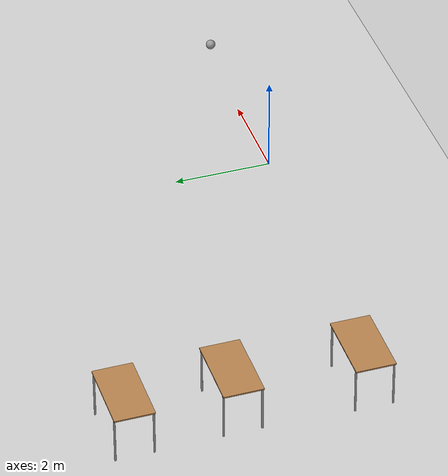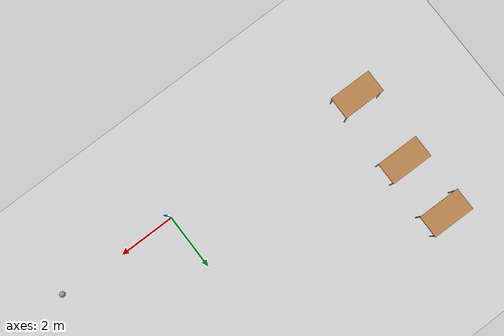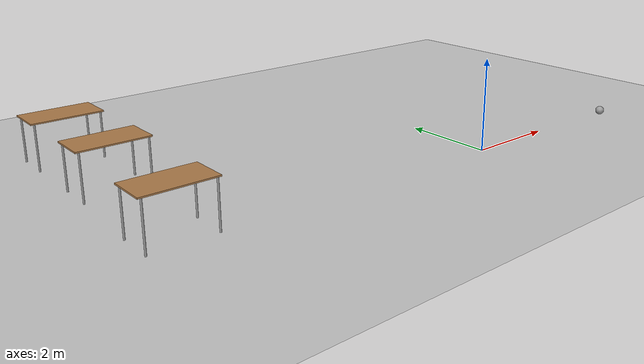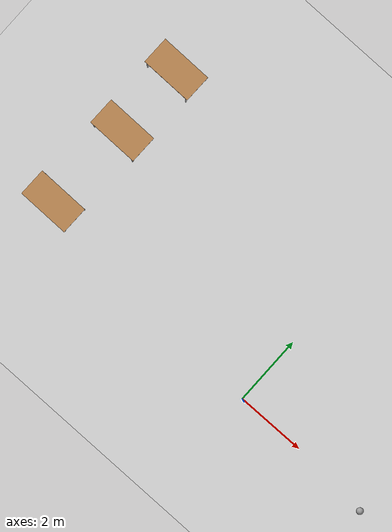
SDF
<sdf version="1.7">
 <world name="default">
  <model name="ground_plane">
   <static>1</static>
   <link name="link">
    <collision name="collision">
     <geometry><plane><normal>0 0 1</normal><size>100 100</size></plane></geometry>
     <surface>
      <contact><collide_bitmask>65535</collide_bitmask></contact>
      <friction><ode><mu>100</mu><mu2>50</mu2></ode></friction>
     </surface>
    </collision>
    <visual name="visual">
     <cast_shadows>0</cast_shadows>
     <geometry><plane><normal>0 0 1</normal><size>100 100</size></plane></geometry>
     <material>
      <script><uri>file://media/materials/scripts/gazebo.material</uri><name>Gazebo/Grey</name></script>
     </material>
    </visual>
   </link>
  </model>
  <model name="table_clone_6">
   <static>1</static>
   <link name="link">
    <collision name="surface">
     <pose>0 0 1 0 -0 0</pose>
     <geometry><box><size>1.5 0.8 0.03</size></box></geometry>
     <surface><friction><ode><mu>0.6</mu><mu2>0.6</mu2></ode></friction></surface>
    </collision>
    <visual name="visual1">
     <pose>0 0 1 0 -0 0</pose>
     <geometry><box><size>1.5 0.8 0.03</size></box></geometry>
     <material>
      <script><uri>file://media/materials/scripts/gazebo.material</uri><name>Gazebo/Wood</name></script>
     </material>
    </visual>
    <collision name="front_left_leg">
     <pose>0.68 0.38 0.5 0 -0 0</pose>
     <geometry><cylinder><radius>0.02</radius><length>1</length></cylinder></geometry>
    </collision>
    <visual name="front_left_leg">
     <pose>0.68 0.38 0.5 0 -0 0</pose>
     <geometry><cylinder><radius>0.02</radius><length>1</length></cylinder></geometry>
     <material>
      <script><uri>file://media/materials/scripts/gazebo.material</uri><name>Gazebo/Grey</name></script>
     </material>
    </visual>
    <collision name="front_right_leg">
     <pose>0.68 -0.38 0.5 0 -0 0</pose>
     <geometry><cylinder><radius>0.02</radius><length>1</length></cylinder></geometry>
    </collision>
    <visual name="front_right_leg">
     <pose>0.68 -0.38 0.5 0 -0 0</pose>
     <geometry><cylinder><radius>0.02</radius><length>1</length></cylinder></geometry>
     <material>
      <script><uri>file://media/materials/scripts/gazebo.material</uri><name>Gazebo/Grey</name></script>
     </material>
    </visual>
    <collision name="back_right_leg">
     <pose>-0.68 -0.38 0.5 0 -0 0</pose>
     <geometry><cylinder><radius>0.02</radius><length>1</length></cylinder></geometry>
    </collision>
    <visual name="back_right_leg">
     <pose>-0.68 -0.38 0.5 0 -0 0</pose>
     <geometry><cylinder><radius>0.02</radius><length>1</length></cylinder></geometry>
     <material>
      <script><uri>file://media/materials/scripts/gazebo.material</uri><name>Gazebo/Grey</name></script>
     </material>
    </visual>
    <collision name="back_left_leg">
     <pose>-0.68 0.38 0.5 0 -0 0</pose>
     <geometry><cylinder><radius>0.02</radius><length>1</length></cylinder></geometry>
    </collision>
    <visual name="back_left_leg">
     <pose>-0.68 0.38 0.5 0 -0 0</pose>
     <geometry><cylinder><radius>0.02</radius><length>1</length></cylinder></geometry>
     <material>
      <script><uri>file://media/materials/scripts/gazebo.material</uri><name>Gazebo/Grey</name></script>
     </material>
    </visual>
   </link>
   <pose>-7.04237 5.24767 0 0.002967 2.7e-05 3.13252</pose>
  </model>
  <model name="table_clone_6_clone">
   <static>1</static>
   <link name="link">
    <collision name="surface">
     <pose>0 0 1 0 -0 0</pose>
     <geometry><box><size>1.5 0.8 0.03</size></box></geometry>
     <surface><friction><ode><mu>0.6</mu><mu2>0.6</mu2></ode></friction></surface>
    </collision>
    <visual name="visual1">
     <pose>0 0 1 0 -0 0</pose>
     <geometry><box><size>1.5 0.8 0.03</size></box></geometry>
     <material>
      <script><uri>file://media/materials/scripts/gazebo.material</uri><name>Gazebo/Wood</name></script>
     </material>
    </visual>
    <collision name="front_left_leg">
     <pose>0.68 0.38 0.5 0 -0 0</pose>
     <geometry><cylinder><radius>0.02</radius><length>1</length></cylinder></geometry>
    </collision>
    <visual name="front_left_leg">
     <pose>0.68 0.38 0.5 0 -0 0</pose>
     <geometry><cylinder><radius>0.02</radius><length>1</length></cylinder></geometry>
     <material>
      <script><uri>file://media/materials/scripts/gazebo.material</uri><name>Gazebo/Grey</name></script>
     </material>
    </visual>
    <collision name="front_right_leg">
     <pose>0.68 -0.38 0.5 0 -0 0</pose>
     <geometry><cylinder><radius>0.02</radius><length>1</length></cylinder></geometry>
    </collision>
    <visual name="front_right_leg">
     <pose>0.68 -0.38 0.5 0 -0 0</pose>
     <geometry><cylinder><radius>0.02</radius><length>1</length></cylinder></geometry>
     <material>
      <script><uri>file://media/materials/scripts/gazebo.material</uri><name>Gazebo/Grey</name></script>
     </material>
    </visual>
    <collision name="back_right_leg">
     <pose>-0.68 -0.38 0.5 0 -0 0</pose>
     <geometry><cylinder><radius>0.02</radius><length>1</length></cylinder></geometry>
    </collision>
    <visual name="back_right_leg">
     <pose>-0.68 -0.38 0.5 0 -0 0</pose>
     <geometry><cylinder><radius>0.02</radius><length>1</length></cylinder></geometry>
     <material>
      <script><uri>file://media/materials/scripts/gazebo.material</uri><name>Gazebo/Grey</name></script>
     </material>
    </visual>
    <collision name="back_left_leg">
     <pose>-0.68 0.38 0.5 0 -0 0</pose>
     <geometry><cylinder><radius>0.02</radius><length>1</length></cylinder></geometry>
    </collision>
    <visual name="back_left_leg">
     <pose>-0.68 0.38 0.5 0 -0 0</pose>
     <geometry><cylinder><radius>0.02</radius><length>1</length></cylinder></geometry>
     <material>
      <script><uri>file://media/materials/scripts/gazebo.material</uri><name>Gazebo/Grey</name></script>
     </material>
    </visual>
   </link>
   <pose>-7.03669 3.132 0 0.002967 2.7e-05 3.13252</pose>
  </model>
  <model name="table_clone_6_clone_0">
   <static>1</static>
   <link name="link">
    <collision name="surface">
     <pose>0 0 1 0 -0 0</pose>
     <geometry><box><size>1.5 0.8 0.03</size></box></geometry>
     <surface><friction><ode><mu>0.6</mu><mu2>0.6</mu2></ode></friction></surface>
    </collision>
    <visual name="visual1">
     <pose>0 0 1 0 -0 0</pose>
     <geometry><box><size>1.5 0.8 0.03</size></box></geometry>
     <material>
      <script><uri>file://media/materials/scripts/gazebo.material</uri><name>Gazebo/Wood</name></script>
     </material>
    </visual>
    <collision name="front_left_leg">
     <pose>0.68 0.38 0.5 0 -0 0</pose>
     <geometry><cylinder><radius>0.02</radius><length>1</length></cylinder></geometry>
    </collision>
    <visual name="front_left_leg">
     <pose>0.68 0.38 0.5 0 -0 0</pose>
     <geometry><cylinder><radius>0.02</radius><length>1</length></cylinder></geometry>
     <material>
      <script><uri>file://media/materials/scripts/gazebo.material</uri><name>Gazebo/Grey</name></script>
     </material>
    </visual>
    <collision name="front_right_leg">
     <pose>0.68 -0.38 0.5 0 -0 0</pose>
     <geometry><cylinder><radius>0.02</radius><length>1</length></cylinder></geometry>
    </collision>
    <visual name="front_right_leg">
     <pose>0.68 -0.38 0.5 0 -0 0</pose>
     <geometry><cylinder><radius>0.02</radius><length>1</length></cylinder></geometry>
     <material>
      <script><uri>file://media/materials/scripts/gazebo.material</uri><name>Gazebo/Grey</name></script>
     </material>
    </visual>
    <collision name="back_right_leg">
     <pose>-0.68 -0.38 0.5 0 -0 0</pose>
     <geometry><cylinder><radius>0.02</radius><length>1</length></cylinder></geometry>
    </collision>
    <visual name="back_right_leg">
     <pose>-0.68 -0.38 0.5 0 -0 0</pose>
     <geometry><cylinder><radius>0.02</radius><length>1</length></cylinder></geometry>
     <material>
      <script><uri>file://media/materials/scripts/gazebo.material</uri><name>Gazebo/Grey</name></script>
     </material>
    </visual>
    <collision name="back_left_leg">
     <pose>-0.68 0.38 0.5 0 -0 0</pose>
     <geometry><cylinder><radius>0.02</radius><length>1</length></cylinder></geometry>
    </collision>
    <visual name="back_left_leg">
     <pose>-0.68 0.38 0.5 0 -0 0</pose>
     <geometry><cylinder><radius>0.02</radius><length>1</length></cylinder></geometry>
     <material>
      <script><uri>file://media/materials/scripts/gazebo.material</uri><name>Gazebo/Grey</name></script>
     </material>
    </visual>
   </link>
   <pose>-7.14018 0.55976 0 0.002967 2.7e-05 3.13252</pose>
  </model>
  <model name="my_ball">
   <link name="link">
    <inertial>
     <mass>1</mass>
     <inertia><ixx>0.1</ixx><ixy>0</ixy><ixz>0</ixz><iyy>0.1</iyy><iyz>0</iyz><izz>0.1</izz></inertia>
    </inertial>
    <visual name="visual">
     <geometry><sphere><radius>0.1</radius></sphere></geometry>
     <material>
      <script><name>Gazebo/Grey</name><uri>file://media/materials/scripts/gazebo.material</uri></script>
      <shader type="pixel"><normal_map>__default__</normal_map></shader>
      <ambient>1 1 1 1</ambient>
      <diffuse>1 1 1 1</diffuse>
      <specular>1 1 1 1</specular>
      <emissive>1 1 1 1</emissive>
     </material>
    </visual>
    <collision name="collision">
     <geometry><sphere><radius>0.1</radius></sphere></geometry>
     <surface>
      <friction>
       <ode><mu>1</mu><mu2>1</mu2><fdir1>0 0 0</fdir1><slip1>0</slip1><slip2>0</slip2></ode>
       <torsional>
        <coefficient>1</coefficient>
        <patch_radius>0</patch_radius>
        <surface_radius>0</surface_radius>
        <use_patch_radius>1</use_patch_radius>
        <ode><slip>0</slip></ode>
       </torsional>
      </friction>
      <bounce><restitution_coefficient>0</restitution_coefficient><threshold>1e+06</threshold></bounce>
      <contact>
       <collide_without_contact>0</collide_without_contact>
       <collide_without_contact_bitmask>1</collide_without_contact_bitmask>
       <collide_bitmask>1</collide_bitmask>
       <ode>
        <soft_cfm>0</soft_cfm>
        <soft_erp>0.2</soft_erp>
        <kp>1e+13</kp>
        <kd>1</kd>
        <max_vel>0.01</max_vel>
        <min_depth>0</min_depth>
       </ode>
       <bullet>
        <split_impulse>1</split_impulse>
        <split_impulse_penetration_threshold>-0.01</split_impulse_penetration_threshold>
        <soft_cfm>0</soft_cfm>
        <soft_erp>0.2</soft_erp>
        <kp>1e+13</kp>
        <kd>1</kd>
       </bullet>
      </contact>
     </surface>
    </collision>
   </link>
   <static>0</static>
   <pose>4.28517 -0.141234 0.1 0 -0 0</pose>
  </model>
 </world>
</sdf>
